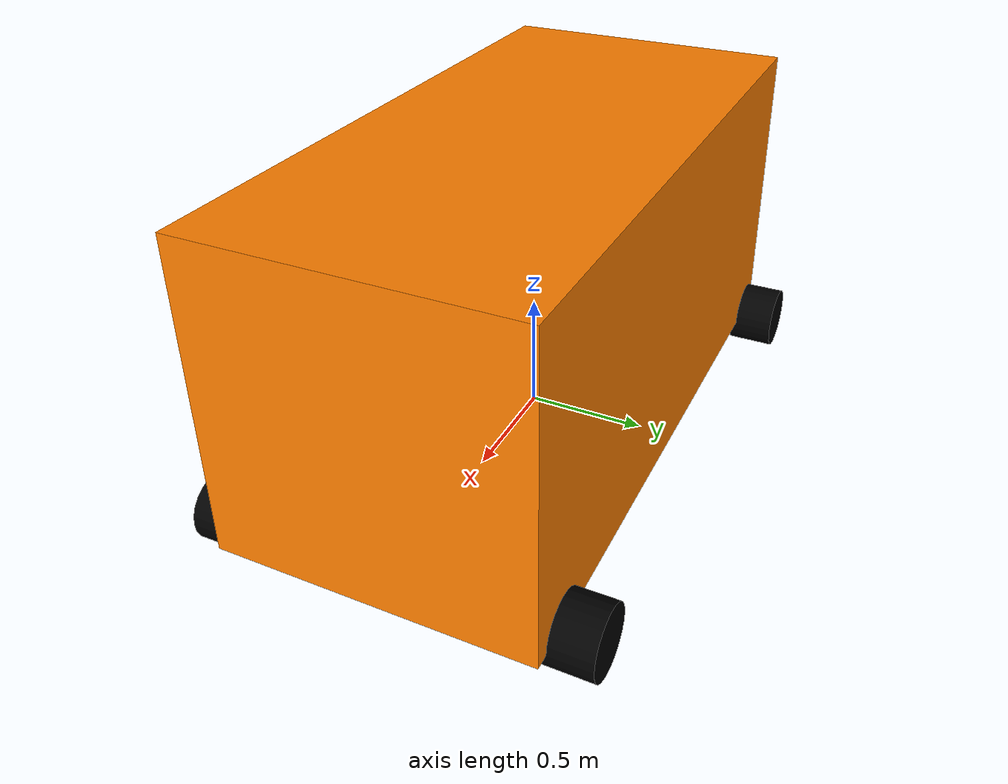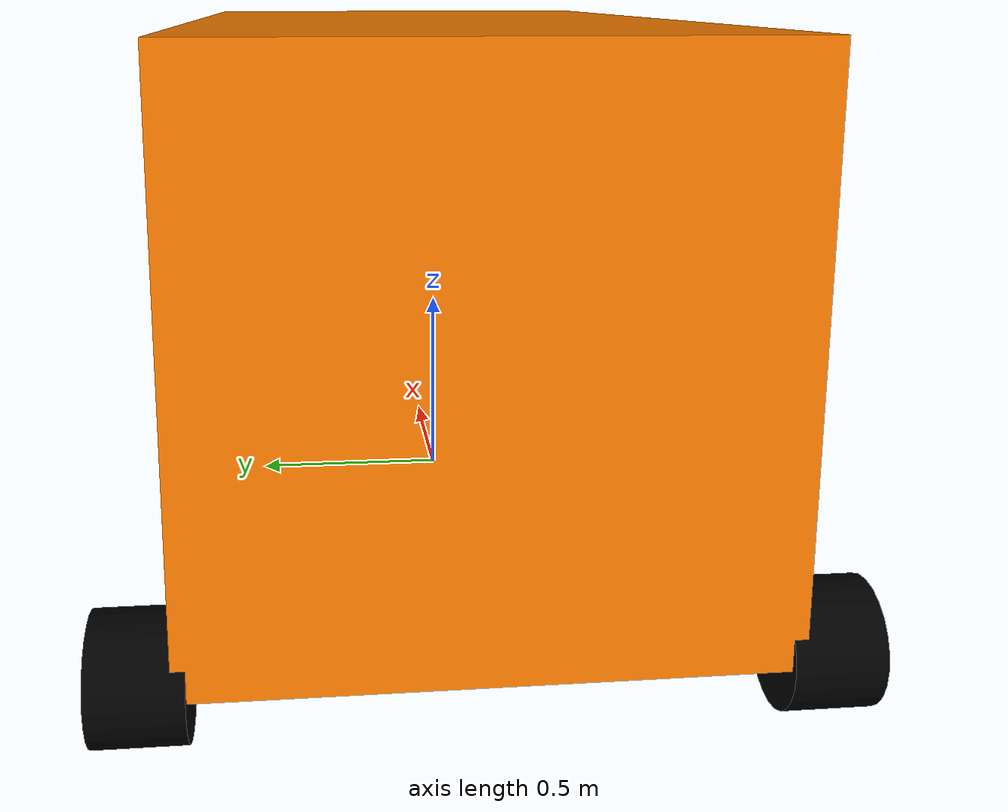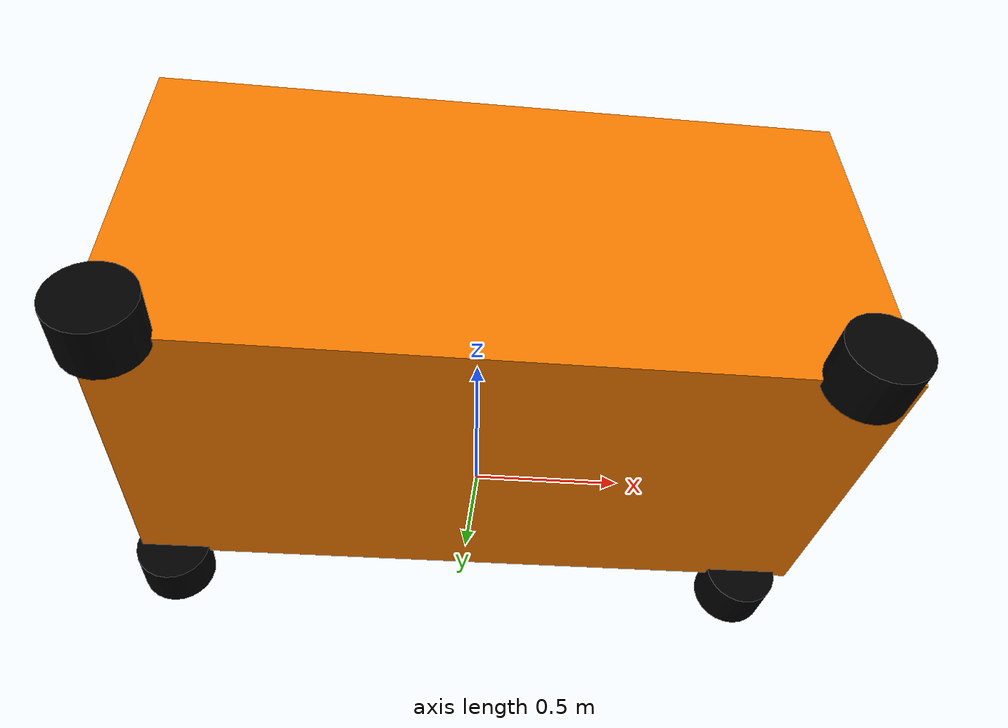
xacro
<?xml version="1.0"?>
<robot name="itls_robot" xmlns:xacro="http://www.ros.org/wiki/xacro">

  <!-- This is used as main xacro for combining different xacros -->
  <!-- For clean version use itls_robot_clean.urdf.xacro -->
  <xacro:include filename="itls_inertial_fns.xacro"/>
  <xacro:include filename="itls_robot_base.xacro"/>
  <xacro:include filename="itls_robot_wheels.xacro"/>
  <xacro:include filename="sensors.xacro"/>

</robot>

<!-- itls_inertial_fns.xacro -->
<robot name="itls_robot" xmlns:xacro="http://www.ros.org/wiki/xacro">

  <!-- Define intertial property macros  -->
  <xacro:macro name="box_inertia" params="m w h d">
    <inertial>
      <origin xyz="0 0 0" rpy="${pi/2} 0 ${pi/2}"/>
      <mass value="${m}"/>
      <inertia ixx="${(m/12) * (h*h + d*d)}" ixy="0.0" ixz="0.0" iyy="${(m/12) * (w*w + d*d)}" iyz="0.0" izz="${(m/12) * (w*w + h*h)}"/>
    </inertial>
  </xacro:macro>
  <xacro:macro name="cylinder_inertia" params="m r h">
    <inertial>
      <origin xyz="0 0 0" rpy="${pi/2} 0 0" />
      <mass value="${m}"/>
      <inertia ixx="${(m/12) * (3*r*r + h*h)}" ixy = "0" ixz = "0" iyy="${(m/12) * (3*r*r + h*h)}" iyz = "0" izz="${(m/2) * (r*r)}"/>
    </inertial>
  </xacro:macro>
  <xacro:macro name="inertial_sphere" params="mass radius *origin">
        <inertial>
            <xacro:insert_block name="origin"/>
            <mass value="${mass}" />
            <inertia ixx="${(2/5) * mass * (radius*radius)}" ixy="0.0" ixz="0.0"
                    iyy="${(2/5) * mass * (radius*radius)}" iyz="0.0"
                    izz="${(2/5) * mass * (radius*radius)}" />
        </inertial>
    </xacro:macro>

 </robot>

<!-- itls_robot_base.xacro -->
<robot name="itls_robot" xmlns:xacro="http://www.ros.org/wiki/xacro">

  <!-- Define robot constants -->
  <xacro:property name="base_width" value="1.3005"/>
  <xacro:property name="base_length" value="4.136"/>
  <xacro:property name="base_height" value="1.3"/>
  <xacro:property name="base_link_to_front" value="2.3715"/>
  <xacro:property name="wheel_radius" value="0.14"/>
  <xacro:property name="base_length_actual" value="2.64"/>
  <xacro:property name="base_link_to_lidar_rear" value="-1.28"/>

  <!-- Robot Base -->

  <link name="base_link">
    <origin xyz="0.0 0.0 ${wheel_radius}" rpy="0.0 0.0 ${pi/2.0}"/>
  </link>

  <link name="robot_center">
    <visual>
      <geometry>
        <box size="${base_length_actual} ${base_width} ${base_height}"/>
      </geometry>
      <material name="Orange">
        <color rgba="1.0 0.5 0 1.0"/>
      </material>
    </visual>
    <collision>
      <geometry>
        <box size="${base_length_actual} ${base_width} ${base_height}"/>
      </geometry>
    </collision>
    <xacro:box_inertia m="1500" w="${base_width}" d="${base_length}" h="${base_height}"/>
  </link>
  <joint name="base_link_T_robot_center" type="fixed">
    <parent link="base_link"/>
    <child link="robot_center"/>
    <origin xyz="${base_link_to_lidar_rear + base_length_actual/2.0} 0.0 ${base_width/2.0}" rpy="0.0 0.0 0.0"/>
  </joint>

  <link name="base_link_front"> </link>

  <joint name="base_link_T_base_link_front" type="fixed">
    <parent link="base_link"/>
    <child link="base_link_front"/>
    <origin xyz="${base_link_to_front} 0.0 0.0" rpy="0.0 0.0 0.0"/>
  </joint>

  <link name="base_link_back"> </link>

  <joint name="base_link_T_base_link_back" type="fixed">
    <parent link="base_link"/>
    <child link="base_link_back"/>
    <origin xyz="${base_link_to_front - base_length} 0.0 0.0" rpy="0.0 0.0 ${pi}"/>
  </joint>

  <!-- Robot Footprint -->

  <link name="base_footprint"/>
  <joint name="base_joint" type="fixed">
    <parent link="base_link"/>
    <child link="base_footprint"/>
    <origin xyz="0.0 0.0 ${-wheel_radius}" rpy="0 0 0"/>
  </joint>

</robot>

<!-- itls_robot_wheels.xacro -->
<robot name="itls_robot"
  xmlns:xacro="http://www.ros.org/wiki/xacro">

  <!--Wheels Constants-->
  <xacro:property name="wheel_radius" value="0.14"/>
  <xacro:property name="wheel_width" value="0.2"/>
  <xacro:property name="wheel_ygap" value="0.07"/>
  <xacro:property name="wheel_zoff" value="0.0"/>
  <xacro:property name="wheel_xoff" value="-0.16"/>

  <!-- Wheels Xacro and instances -->
  <xacro:macro name="wheel" params="prefix x_reflect y_reflect fixedOrCont">
    <link name="${prefix}_link">
      <visual>
        <origin xyz="0 0 0" rpy="${pi/2} 0 0"/>
        <geometry>
          <cylinder radius="${wheel_radius}" length="${wheel_width}"/>
        </geometry>
        <material name="Black">
          <color rgba="0 0 0 1"/>
        </material>
      </visual>
      <collision>
        <origin xyz="0 0 0" rpy="${pi/2} 0 0"/>
        <geometry>
          <cylinder radius="${wheel_radius}" length="${wheel_width}"/>
        </geometry>
      </collision>
      <xacro:cylinder_inertia m="50" r="${wheel_radius}" h="${wheel_width}"/>
    </link>
    <joint name="${prefix}_joint" type="${fixedOrCont}">
      <parent link="base_link"/>
      <child link="${prefix}_link"/>
      <origin xyz="${x_reflect*(wheel_xoff + (base_length_actual/2))} ${y_reflect*(base_width/2+wheel_ygap)} ${wheel_zoff}" rpy="0 0 0"/>
      <axis xyz="0 1 0"/>
    </joint>
  </xacro:macro>
  <xacro:wheel fixedOrCont="continuous" prefix="frontwhl_l" x_reflect="1" y_reflect="1" />
  <xacro:wheel fixedOrCont="continuous" prefix="frontwhl_r" x_reflect="1" y_reflect="-1" />
  <xacro:wheel fixedOrCont="continuous" prefix="rearwhl_l" x_reflect="-1" y_reflect="1" />
  <xacro:wheel fixedOrCont="continuous" prefix="rearwhl_r" x_reflect="-1" y_reflect="-1" />

</robot>
